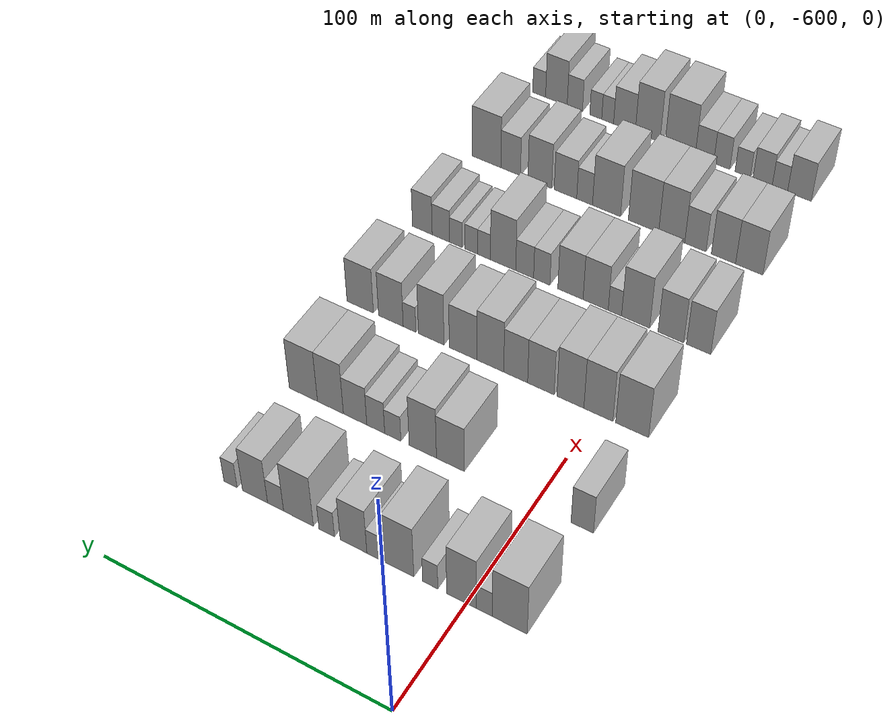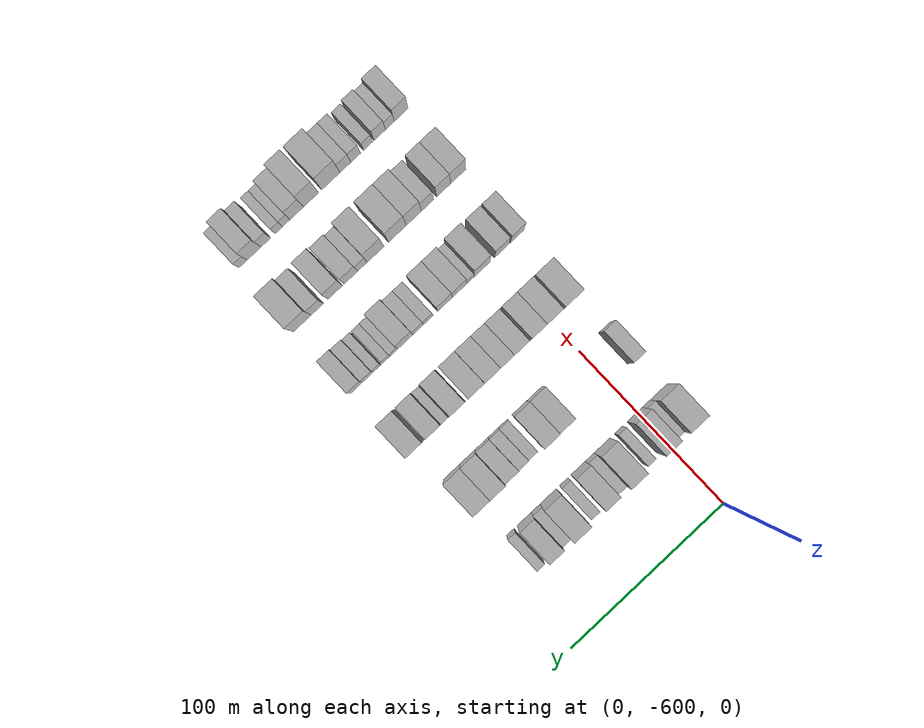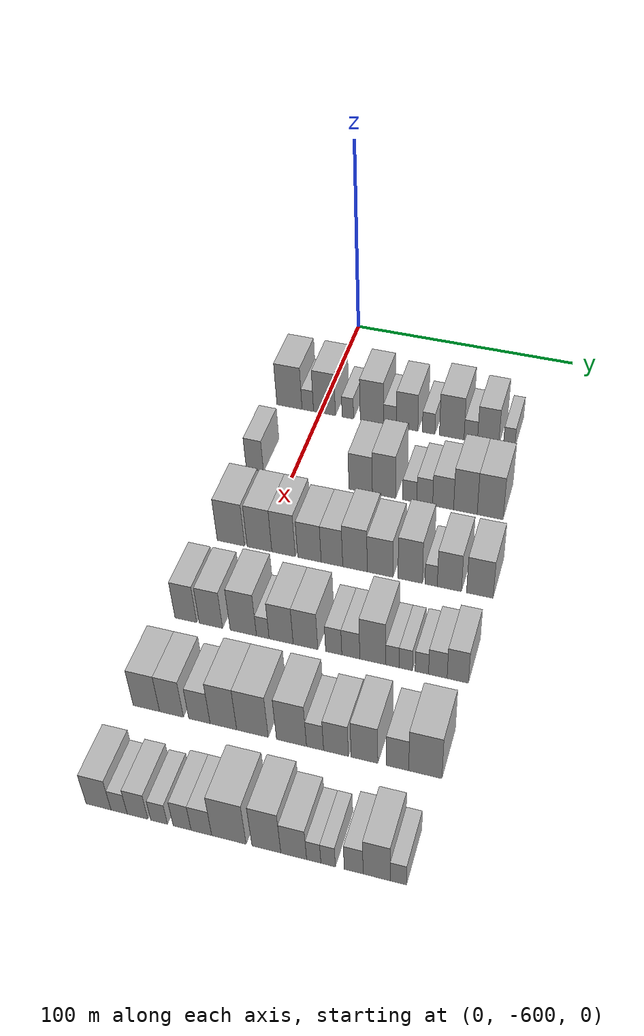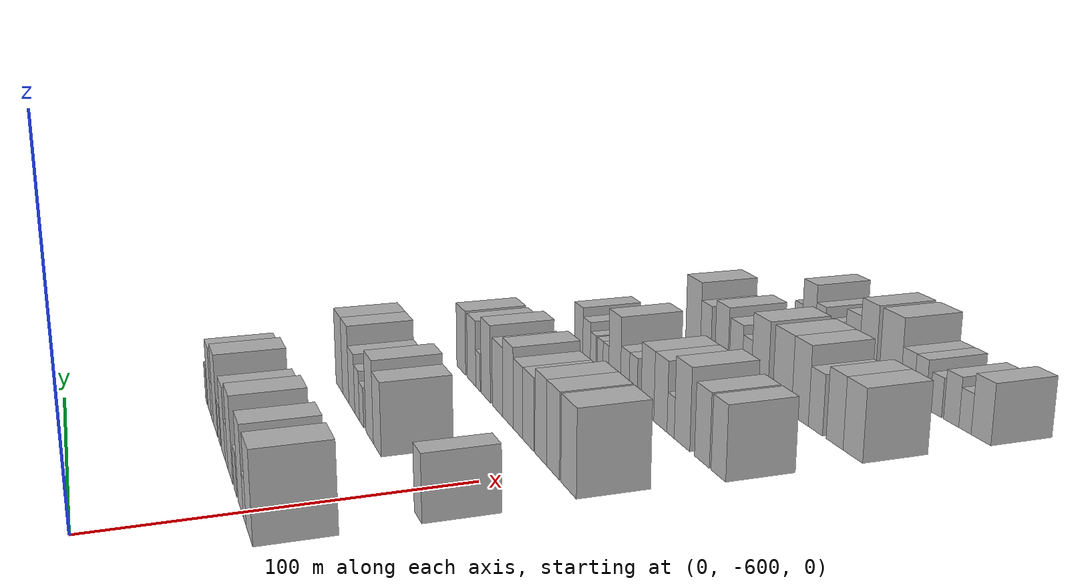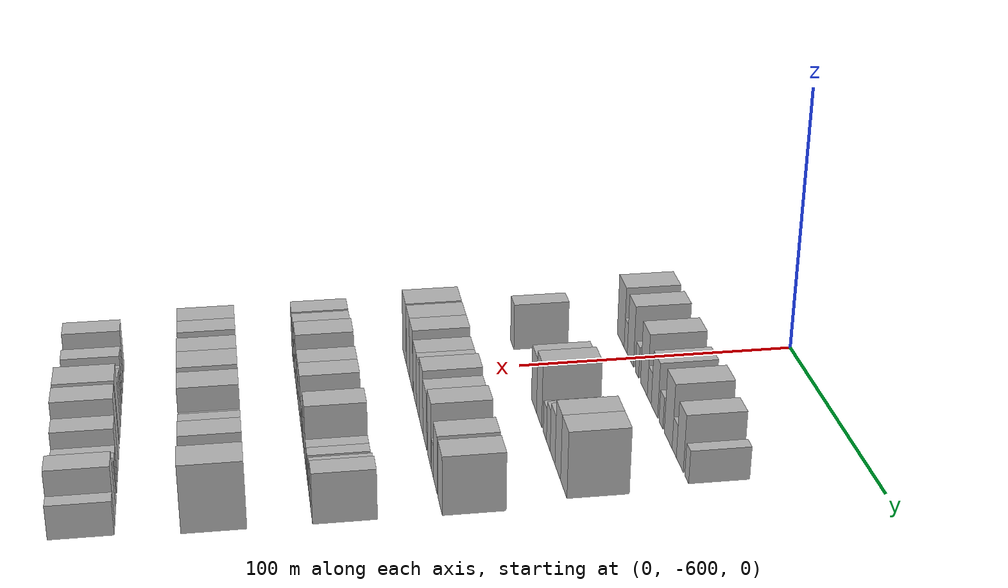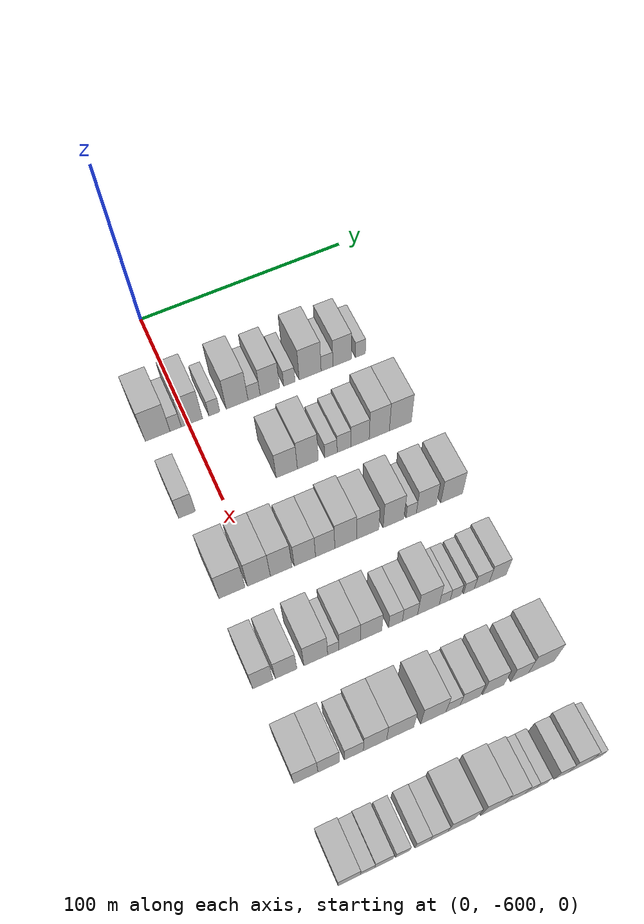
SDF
<sdf version="1.6">
 <world name="default">
  <model name="building_1">
   <static>1</static>
   <pose>50.0000 -614.2552 0 0.000000 0.000000 0.000000</pose>
   <link name="link">
    <pose>0 0 12.00 0 0 0</pose>
    <collision name="collision"><geometry><box><size>20.0000 11.4896 24.0000</size></box></geometry></collision>
    <visual name="visual">
     <cast_shadows>0</cast_shadows>
     <geometry><box><size>20.0000 11.4896 24.0000</size></box></geometry>
     <material>
      <script>
       <uri>model://HANNAS_wall/materials/scripts</uri>
       <uri>model://HANNAS_wall/materials/textures</uri>
       <name>vrc/HANNAS_wall</name>
      </script>
     </material>
    </visual>
   </link>
  </model>
  <model name="building_2">
   <static>1</static>
   <pose>50.0000 -605.8968 0 0.000000 0.000000 0.000000</pose>
   <link name="link">
    <pose>0 0 6.00 0 0 0</pose>
    <collision name="collision"><geometry><box><size>20.0000 5.2273 12.0000</size></box></geometry></collision>
    <visual name="visual">
     <cast_shadows>0</cast_shadows>
     <geometry><box><size>20.0000 5.2273 12.0000</size></box></geometry>
     <material>
      <script>
       <uri>model://HANNAS_wall/materials/scripts</uri>
       <uri>model://HANNAS_wall/materials/textures</uri>
       <name>vrc/HANNAS_wall</name>
      </script>
     </material>
    </visual>
   </link>
  </model>
  <model name="building_3">
   <static>1</static>
   <pose>50.0000 -598.3122 0 0.000000 0.000000 0.000000</pose>
   <link name="link">
    <pose>0 0 12.00 0 0 0</pose>
    <collision name="collision"><geometry><box><size>20.0000 9.9418 24.0000</size></box></geometry></collision>
    <visual name="visual">
     <cast_shadows>0</cast_shadows>
     <geometry><box><size>20.0000 9.9418 24.0000</size></box></geometry>
     <material>
      <script>
       <uri>model://HANNAS_wall/materials/scripts</uri>
       <uri>model://HANNAS_wall/materials/textures</uri>
       <name>vrc/HANNAS_wall</name>
      </script>
     </material>
    </visual>
   </link>
  </model>
  <model name="building_4">
   <static>1</static>
   <pose>50.0000 -587.7606 0 0.000000 0.000000 0.000000</pose>
   <link name="link">
    <pose>0 0 6.00 0 0 0</pose>
    <collision name="collision"><geometry><box><size>20.0000 5.1613 12.0000</size></box></geometry></collision>
    <visual name="visual">
     <cast_shadows>0</cast_shadows>
     <geometry><box><size>20.0000 5.1613 12.0000</size></box></geometry>
     <material>
      <script>
       <uri>model://HANNAS_wall/materials/scripts</uri>
       <uri>model://HANNAS_wall/materials/textures</uri>
       <name>vrc/HANNAS_wall</name>
      </script>
     </material>
    </visual>
   </link>
  </model>
  <model name="building_5">
   <static>1</static>
   <pose>50.0000 -576.9690 0 0.000000 0.000000 0.000000</pose>
   <link name="link">
    <pose>0 0 12.00 0 0 0</pose>
    <collision name="collision"><geometry><box><size>20.0000 10.4220 24.0000</size></box></geometry></collision>
    <visual name="visual">
     <cast_shadows>0</cast_shadows>
     <geometry><box><size>20.0000 10.4220 24.0000</size></box></geometry>
     <material>
      <script>
       <uri>model://HANNAS_wall/materials/scripts</uri>
       <uri>model://HANNAS_wall/materials/textures</uri>
       <name>vrc/HANNAS_wall</name>
      </script>
     </material>
    </visual>
   </link>
  </model>
  <model name="building_6">
   <static>1</static>
   <pose>50.0000 -568.8618 0 0.000000 0.000000 0.000000</pose>
   <link name="link">
    <pose>0 0 6.00 0 0 0</pose>
    <collision name="collision"><geometry><box><size>20.0000 5.7923 12.0000</size></box></geometry></collision>
    <visual name="visual">
     <cast_shadows>0</cast_shadows>
     <geometry><box><size>20.0000 5.7923 12.0000</size></box></geometry>
     <material>
      <script>
       <uri>model://HANNAS_wall/materials/scripts</uri>
       <uri>model://HANNAS_wall/materials/textures</uri>
       <name>vrc/HANNAS_wall</name>
      </script>
     </material>
    </visual>
   </link>
  </model>
  <model name="building_7">
   <static>1</static>
   <pose>50.0000 -561.2793 0 0.000000 0.000000 0.000000</pose>
   <link name="link">
    <pose>0 0 10.50 0 0 0</pose>
    <collision name="collision"><geometry><box><size>20.0000 9.3727 21.0000</size></box></geometry></collision>
    <visual name="visual">
     <cast_shadows>0</cast_shadows>
     <geometry><box><size>20.0000 9.3727 21.0000</size></box></geometry>
     <material>
      <script>
       <uri>model://HANNAS_wall/materials/scripts</uri>
       <uri>model://HANNAS_wall/materials/textures</uri>
       <name>vrc/HANNAS_wall</name>
      </script>
     </material>
    </visual>
   </link>
  </model>
  <model name="building_8">
   <static>1</static>
   <pose>50.0000 -551.8442 0 0.000000 0.000000 0.000000</pose>
   <link name="link">
    <pose>0 0 6.00 0 0 0</pose>
    <collision name="collision"><geometry><box><size>20.0000 5.4976 12.0000</size></box></geometry></collision>
    <visual name="visual">
     <cast_shadows>0</cast_shadows>
     <geometry><box><size>20.0000 5.4976 12.0000</size></box></geometry>
     <material>
      <script>
       <uri>model://HANNAS_wall/materials/scripts</uri>
       <uri>model://HANNAS_wall/materials/textures</uri>
       <name>vrc/HANNAS_wall</name>
      </script>
     </material>
    </visual>
   </link>
  </model>
  <model name="building_9">
   <static>1</static>
   <pose>50.0000 -541.7433 0 0.000000 0.000000 0.000000</pose>
   <link name="link">
    <pose>0 0 12.00 0 0 0</pose>
    <collision name="collision"><geometry><box><size>20.0000 10.7042 24.0000</size></box></geometry></collision>
    <visual name="visual">
     <cast_shadows>0</cast_shadows>
     <geometry><box><size>20.0000 10.7042 24.0000</size></box></geometry>
     <material>
      <script>
       <uri>model://HANNAS_wall/materials/scripts</uri>
       <uri>model://HANNAS_wall/materials/textures</uri>
       <name>vrc/HANNAS_wall</name>
      </script>
     </material>
    </visual>
   </link>
  </model>
  <model name="building_10">
   <static>1</static>
   <pose>50.0000 -533.4846 0 0.000000 0.000000 0.000000</pose>
   <link name="link">
    <pose>0 0 6.00 0 0 0</pose>
    <collision name="collision"><geometry><box><size>20.0000 5.8131 12.0000</size></box></geometry></collision>
    <visual name="visual">
     <cast_shadows>0</cast_shadows>
     <geometry><box><size>20.0000 5.8131 12.0000</size></box></geometry>
     <material>
      <script>
       <uri>model://HANNAS_wall/materials/scripts</uri>
       <uri>model://HANNAS_wall/materials/textures</uri>
       <name>vrc/HANNAS_wall</name>
      </script>
     </material>
    </visual>
   </link>
  </model>
  <model name="building_11">
   <static>1</static>
   <pose>50.0000 -525.9968 0 0.000000 0.000000 0.000000</pose>
   <link name="link">
    <pose>0 0 10.50 0 0 0</pose>
    <collision name="collision"><geometry><box><size>20.0000 9.1624 21.0000</size></box></geometry></collision>
    <visual name="visual">
     <cast_shadows>0</cast_shadows>
     <geometry><box><size>20.0000 9.1624 21.0000</size></box></geometry>
     <material>
      <script>
       <uri>model://HANNAS_wall/materials/scripts</uri>
       <uri>model://HANNAS_wall/materials/textures</uri>
       <name>vrc/HANNAS_wall</name>
      </script>
     </material>
    </visual>
   </link>
  </model>
  <model name="building_12">
   <static>1</static>
   <pose>50.0000 -516.9690 0 0.000000 0.000000 0.000000</pose>
   <link name="link">
    <pose>0 0 6.00 0 0 0</pose>
    <collision name="collision"><geometry><box><size>20.0000 4.8932 12.0000</size></box></geometry></collision>
    <visual name="visual">
     <cast_shadows>0</cast_shadows>
     <geometry><box><size>20.0000 4.8932 12.0000</size></box></geometry>
     <material>
      <script>
       <uri>model://HANNAS_wall/materials/scripts</uri>
       <uri>model://HANNAS_wall/materials/textures</uri>
       <name>vrc/HANNAS_wall</name>
      </script>
     </material>
    </visual>
   </link>
  </model>
  <model name="building_144">
   <static>1</static>
   <pose>90.0000 -616.2177 0 0.000000 0.000000 0.000000</pose>
   <link name="link">
    <pose>0 0 9.00 0 0 0</pose>
    <collision name="collision"><geometry><box><size>20.0000 7.5646 18.0000</size></box></geometry></collision>
    <visual name="visual">
     <cast_shadows>0</cast_shadows>
     <geometry><box><size>20.0000 7.5646 18.0000</size></box></geometry>
     <material>
      <script>
       <uri>model://HANNAS_wall/materials/scripts</uri>
       <uri>model://HANNAS_wall/materials/textures</uri>
       <name>vrc/HANNAS_wall</name>
      </script>
     </material>
    </visual>
   </link>
  </model>
  <model name="building_145">
   <static>1</static>
   <pose>90.0000 -570.5468 0 0.000000 0.000000 0.000000</pose>
   <link name="link">
    <pose>0 0 10.50 0 0 0</pose>
    <collision name="collision"><geometry><box><size>20.0000 9.9257 21.0000</size></box></geometry></collision>
    <visual name="visual">
     <cast_shadows>0</cast_shadows>
     <geometry><box><size>20.0000 9.9257 21.0000</size></box></geometry>
     <material>
      <script>
       <uri>model://HANNAS_wall/materials/scripts</uri>
       <uri>model://HANNAS_wall/materials/textures</uri>
       <name>vrc/HANNAS_wall</name>
      </script>
     </material>
    </visual>
   </link>
  </model>
  <model name="building_146">
   <static>1</static>
   <pose>90.0000 -560.6741 0 0.000000 0.000000 0.000000</pose>
   <link name="link">
    <pose>0 0 12.00 0 0 0</pose>
    <collision name="collision"><geometry><box><size>20.0000 9.8198 24.0000</size></box></geometry></collision>
    <visual name="visual">
     <cast_shadows>0</cast_shadows>
     <geometry><box><size>20.0000 9.8198 24.0000</size></box></geometry>
     <material>
      <script>
       <uri>model://HANNAS_wall/materials/scripts</uri>
       <uri>model://HANNAS_wall/materials/textures</uri>
       <name>vrc/HANNAS_wall</name>
      </script>
     </material>
    </visual>
   </link>
  </model>
  <model name="building_147">
   <static>1</static>
   <pose>90.0000 -549.8131 0 0.000000 0.000000 0.000000</pose>
   <link name="link">
    <pose>0 0 6.00 0 0 0</pose>
    <collision name="collision"><geometry><box><size>20.0000 5.9021 12.0000</size></box></geometry></collision>
    <visual name="visual">
     <cast_shadows>0</cast_shadows>
     <geometry><box><size>20.0000 5.9021 12.0000</size></box></geometry>
     <material>
      <script>
       <uri>model://HANNAS_wall/materials/scripts</uri>
       <uri>model://HANNAS_wall/materials/textures</uri>
       <name>vrc/HANNAS_wall</name>
      </script>
     </material>
    </visual>
   </link>
  </model>
  <model name="building_148">
   <static>1</static>
   <pose>90.0000 -543.5693 0 0.000000 0.000000 0.000000</pose>
   <link name="link">
    <pose>0 0 7.50 0 0 0</pose>
    <collision name="collision"><geometry><box><size>20.0000 6.5854 15.0000</size></box></geometry></collision>
    <visual name="visual">
     <cast_shadows>0</cast_shadows>
     <geometry><box><size>20.0000 6.5854 15.0000</size></box></geometry>
     <material>
      <script>
       <uri>model://HANNAS_wall/materials/scripts</uri>
       <uri>model://HANNAS_wall/materials/textures</uri>
       <name>vrc/HANNAS_wall</name>
      </script>
     </material>
    </visual>
   </link>
  </model>
  <model name="building_149">
   <static>1</static>
   <pose>90.0000 -535.9341 0 0.000000 0.000000 0.000000</pose>
   <link name="link">
    <pose>0 0 9.00 0 0 0</pose>
    <collision name="collision"><geometry><box><size>20.0000 8.6849 18.0000</size></box></geometry></collision>
    <visual name="visual">
     <cast_shadows>0</cast_shadows>
     <geometry><box><size>20.0000 8.6849 18.0000</size></box></geometry>
     <material>
      <script>
       <uri>model://HANNAS_wall/materials/scripts</uri>
       <uri>model://HANNAS_wall/materials/textures</uri>
       <name>vrc/HANNAS_wall</name>
      </script>
     </material>
    </visual>
   </link>
  </model>
  <model name="building_150">
   <static>1</static>
   <pose>90.0000 -526.7339 0 0.000000 0.000000 0.000000</pose>
   <link name="link">
    <pose>0 0 12.00 0 0 0</pose>
    <collision name="collision"><geometry><box><size>20.0000 9.7155 24.0000</size></box></geometry></collision>
    <visual name="visual">
     <cast_shadows>0</cast_shadows>
     <geometry><box><size>20.0000 9.7155 24.0000</size></box></geometry>
     <material>
      <script>
       <uri>model://HANNAS_wall/materials/scripts</uri>
       <uri>model://HANNAS_wall/materials/textures</uri>
       <name>vrc/HANNAS_wall</name>
      </script>
     </material>
    </visual>
   </link>
  </model>
  <model name="building_151">
   <static>1</static>
   <pose>90.0000 -516.5508 0 0.000000 0.000000 0.000000</pose>
   <link name="link">
    <pose>0 0 12.00 0 0 0</pose>
    <collision name="collision"><geometry><box><size>20.0000 10.6507 24.0000</size></box></geometry></collision>
    <visual name="visual">
     <cast_shadows>0</cast_shadows>
     <geometry><box><size>20.0000 10.6507 24.0000</size></box></geometry>
     <material>
      <script>
       <uri>model://HANNAS_wall/materials/scripts</uri>
       <uri>model://HANNAS_wall/materials/textures</uri>
       <name>vrc/HANNAS_wall</name>
      </script>
     </material>
    </visual>
   </link>
  </model>
  <model name="building_280">
   <static>1</static>
   <pose>130.0000 -612.2643 0 0.000000 0.000000 0.000000</pose>
   <link name="link">
    <pose>0 0 12.00 0 0 0</pose>
    <collision name="collision"><geometry><box><size>20.0000 11.4713 24.0000</size></box></geometry></collision>
    <visual name="visual">
     <cast_shadows>0</cast_shadows>
     <geometry><box><size>20.0000 11.4713 24.0000</size></box></geometry>
     <material>
      <script>
       <uri>model://HANNAS_wall/materials/scripts</uri>
       <uri>model://HANNAS_wall/materials/textures</uri>
       <name>vrc/HANNAS_wall</name>
      </script>
     </material>
    </visual>
   </link>
  </model>
  <model name="building_281">
   <static>1</static>
   <pose>130.0000 -600.4099 0 0.000000 0.000000 0.000000</pose>
   <link name="link">
    <pose>0 0 12.00 0 0 0</pose>
    <collision name="collision"><geometry><box><size>20.0000 10.2377 24.0000</size></box></geometry></collision>
    <visual name="visual">
     <cast_shadows>0</cast_shadows>
     <geometry><box><size>20.0000 10.2377 24.0000</size></box></geometry>
     <material>
      <script>
       <uri>model://HANNAS_wall/materials/scripts</uri>
       <uri>model://HANNAS_wall/materials/textures</uri>
       <name>vrc/HANNAS_wall</name>
      </script>
     </material>
    </visual>
   </link>
  </model>
  <model name="building_282">
   <static>1</static>
   <pose>130.0000 -590.4721 0 0.000000 0.000000 0.000000</pose>
   <link name="link">
    <pose>0 0 12.00 0 0 0</pose>
    <collision name="collision"><geometry><box><size>20.0000 9.6379 24.0000</size></box></geometry></collision>
    <visual name="visual">
     <cast_shadows>0</cast_shadows>
     <geometry><box><size>20.0000 9.6379 24.0000</size></box></geometry>
     <material>
      <script>
       <uri>model://HANNAS_wall/materials/scripts</uri>
       <uri>model://HANNAS_wall/materials/textures</uri>
       <name>vrc/HANNAS_wall</name>
      </script>
     </material>
    </visual>
   </link>
  </model>
  <model name="building_283">
   <static>1</static>
   <pose>130.0000 -579.8656 0 0.000000 0.000000 0.000000</pose>
   <link name="link">
    <pose>0 0 10.50 0 0 0</pose>
    <collision name="collision"><geometry><box><size>20.0000 9.5750 21.0000</size></box></geometry></collision>
    <visual name="visual">
     <cast_shadows>0</cast_shadows>
     <geometry><box><size>20.0000 9.5750 21.0000</size></box></geometry>
     <material>
      <script>
       <uri>model://HANNAS_wall/materials/scripts</uri>
       <uri>model://HANNAS_wall/materials/textures</uri>
       <name>vrc/HANNAS_wall</name>
      </script>
     </material>
    </visual>
   </link>
  </model>
  <model name="building_284">
   <static>1</static>
   <pose>130.0000 -570.7141 0 0.000000 0.000000 0.000000</pose>
   <link name="link">
    <pose>0 0 10.50 0 0 0</pose>
    <collision name="collision"><geometry><box><size>20.0000 8.7280 21.0000</size></box></geometry></collision>
    <visual name="visual">
     <cast_shadows>0</cast_shadows>
     <geometry><box><size>20.0000 8.7280 21.0000</size></box></geometry>
     <material>
      <script>
       <uri>model://HANNAS_wall/materials/scripts</uri>
       <uri>model://HANNAS_wall/materials/textures</uri>
       <name>vrc/HANNAS_wall</name>
      </script>
     </material>
    </visual>
   </link>
  </model>
  <model name="building_285">
   <static>1</static>
   <pose>130.0000 -561.3985 0 0.000000 0.000000 0.000000</pose>
   <link name="link">
    <pose>0 0 12.00 0 0 0</pose>
    <collision name="collision"><geometry><box><size>20.0000 9.9030 24.0000</size></box></geometry></collision>
    <visual name="visual">
     <cast_shadows>0</cast_shadows>
     <geometry><box><size>20.0000 9.9030 24.0000</size></box></geometry>
     <material>
      <script>
       <uri>model://HANNAS_wall/materials/scripts</uri>
       <uri>model://HANNAS_wall/materials/textures</uri>
       <name>vrc/HANNAS_wall</name>
      </script>
     </material>
    </visual>
   </link>
  </model>
  <model name="building_286">
   <static>1</static>
   <pose>130.0000 -551.3024 0 0.000000 0.000000 0.000000</pose>
   <link name="link">
    <pose>0 0 10.50 0 0 0</pose>
    <collision name="collision"><geometry><box><size>20.0000 10.2893 21.0000</size></box></geometry></collision>
    <visual name="visual">
     <cast_shadows>0</cast_shadows>
     <geometry><box><size>20.0000 10.2893 21.0000</size></box></geometry>
     <material>
      <script>
       <uri>model://HANNAS_wall/materials/scripts</uri>
       <uri>model://HANNAS_wall/materials/textures</uri>
       <name>vrc/HANNAS_wall</name>
      </script>
     </material>
    </visual>
   </link>
  </model>
  <model name="building_287">
   <static>1</static>
   <pose>130.0000 -539.3271 0 0.000000 0.000000 0.000000</pose>
   <link name="link">
    <pose>0 0 12.00 0 0 0</pose>
    <collision name="collision"><geometry><box><size>20.0000 9.6613 24.0000</size></box></geometry></collision>
    <visual name="visual">
     <cast_shadows>0</cast_shadows>
     <geometry><box><size>20.0000 9.6613 24.0000</size></box></geometry>
     <material>
      <script>
       <uri>model://HANNAS_wall/materials/scripts</uri>
       <uri>model://HANNAS_wall/materials/textures</uri>
       <name>vrc/HANNAS_wall</name>
      </script>
     </material>
    </visual>
   </link>
  </model>
  <model name="building_288">
   <static>1</static>
   <pose>130.0000 -531.0781 0 0.000000 0.000000 0.000000</pose>
   <link name="link">
    <pose>0 0 6.00 0 0 0</pose>
    <collision name="collision"><geometry><box><size>20.0000 4.8367 12.0000</size></box></geometry></collision>
    <visual name="visual">
     <cast_shadows>0</cast_shadows>
     <geometry><box><size>20.0000 4.8367 12.0000</size></box></geometry>
     <material>
      <script>
       <uri>model://HANNAS_wall/materials/scripts</uri>
       <uri>model://HANNAS_wall/materials/textures</uri>
       <name>vrc/HANNAS_wall</name>
      </script>
     </material>
    </visual>
   </link>
  </model>
  <model name="building_289">
   <static>1</static>
   <pose>130.0000 -523.9202 0 0.000000 0.000000 0.000000</pose>
   <link name="link">
    <pose>0 0 10.50 0 0 0</pose>
    <collision name="collision"><geometry><box><size>20.0000 9.4791 21.0000</size></box></geometry></collision>
    <visual name="visual">
     <cast_shadows>0</cast_shadows>
     <geometry><box><size>20.0000 9.4791 21.0000</size></box></geometry>
     <material>
      <script>
       <uri>model://HANNAS_wall/materials/scripts</uri>
       <uri>model://HANNAS_wall/materials/textures</uri>
       <name>vrc/HANNAS_wall</name>
      </script>
     </material>
    </visual>
   </link>
  </model>
  <model name="building_290">
   <static>1</static>
   <pose>130.0000 -512.0263 0 0.000000 0.000000 0.000000</pose>
   <link name="link">
    <pose>0 0 10.50 0 0 0</pose>
    <collision name="collision"><geometry><box><size>20.0000 10.3087 21.0000</size></box></geometry></collision>
    <visual name="visual">
     <cast_shadows>0</cast_shadows>
     <geometry><box><size>20.0000 10.3087 21.0000</size></box></geometry>
     <material>
      <script>
       <uri>model://HANNAS_wall/materials/scripts</uri>
       <uri>model://HANNAS_wall/materials/textures</uri>
       <name>vrc/HANNAS_wall</name>
      </script>
     </material>
    </visual>
   </link>
  </model>
  <model name="building_419">
   <static>1</static>
   <pose>170.0000 -615.6729 0 0.000000 0.000000 0.000000</pose>
   <link name="link">
    <pose>0 0 10.50 0 0 0</pose>
    <collision name="collision"><geometry><box><size>20.0000 8.6541 21.0000</size></box></geometry></collision>
    <visual name="visual">
     <cast_shadows>0</cast_shadows>
     <geometry><box><size>20.0000 8.6541 21.0000</size></box></geometry>
     <material>
      <script>
       <uri>model://HANNAS_wall/materials/scripts</uri>
       <uri>model://HANNAS_wall/materials/textures</uri>
       <name>vrc/HANNAS_wall</name>
      </script>
     </material>
    </visual>
   </link>
  </model>
  <model name="building_420">
   <static>1</static>
   <pose>170.0000 -605.7183 0 0.000000 0.000000 0.000000</pose>
   <link name="link">
    <pose>0 0 10.50 0 0 0</pose>
    <collision name="collision"><geometry><box><size>20.0000 9.2551 21.0000</size></box></geometry></collision>
    <visual name="visual">
     <cast_shadows>0</cast_shadows>
     <geometry><box><size>20.0000 9.2551 21.0000</size></box></geometry>
     <material>
      <script>
       <uri>model://HANNAS_wall/materials/scripts</uri>
       <uri>model://HANNAS_wall/materials/textures</uri>
       <name>vrc/HANNAS_wall</name>
      </script>
     </material>
    </visual>
   </link>
  </model>
  <model name="building_421">
   <static>1</static>
   <pose>170.0000 -592.9359 0 0.000000 0.000000 0.000000</pose>
   <link name="link">
    <pose>0 0 12.00 0 0 0</pose>
    <collision name="collision"><geometry><box><size>20.0000 10.3098 24.0000</size></box></geometry></collision>
    <visual name="visual">
     <cast_shadows>0</cast_shadows>
     <geometry><box><size>20.0000 10.3098 24.0000</size></box></geometry>
     <material>
      <script>
       <uri>model://HANNAS_wall/materials/scripts</uri>
       <uri>model://HANNAS_wall/materials/textures</uri>
       <name>vrc/HANNAS_wall</name>
      </script>
     </material>
    </visual>
   </link>
  </model>
  <model name="building_422">
   <static>1</static>
   <pose>170.0000 -585.3154 0 0.000000 0.000000 0.000000</pose>
   <link name="link">
    <pose>0 0 6.00 0 0 0</pose>
    <collision name="collision"><geometry><box><size>20.0000 4.9312 12.0000</size></box></geometry></collision>
    <visual name="visual">
     <cast_shadows>0</cast_shadows>
     <geometry><box><size>20.0000 4.9312 12.0000</size></box></geometry>
     <material>
      <script>
       <uri>model://HANNAS_wall/materials/scripts</uri>
       <uri>model://HANNAS_wall/materials/textures</uri>
       <name>vrc/HANNAS_wall</name>
      </script>
     </material>
    </visual>
   </link>
  </model>
  <model name="building_423">
   <static>1</static>
   <pose>170.0000 -578.1846 0 0.000000 0.000000 0.000000</pose>
   <link name="link">
    <pose>0 0 10.50 0 0 0</pose>
    <collision name="collision"><geometry><box><size>20.0000 9.3304 21.0000</size></box></geometry></collision>
    <visual name="visual">
     <cast_shadows>0</cast_shadows>
     <geometry><box><size>20.0000 9.3304 21.0000</size></box></geometry>
     <material>
      <script>
       <uri>model://HANNAS_wall/materials/scripts</uri>
       <uri>model://HANNAS_wall/materials/textures</uri>
       <name>vrc/HANNAS_wall</name>
      </script>
     </material>
    </visual>
   </link>
  </model>
  <model name="building_424">
   <static>1</static>
   <pose>170.0000 -568.7692 0 0.000000 0.000000 0.000000</pose>
   <link name="link">
    <pose>0 0 10.50 0 0 0</pose>
    <collision name="collision"><geometry><box><size>20.0000 9.5005 21.0000</size></box></geometry></collision>
    <visual name="visual">
     <cast_shadows>0</cast_shadows>
     <geometry><box><size>20.0000 9.5005 21.0000</size></box></geometry>
     <material>
      <script>
       <uri>model://HANNAS_wall/materials/scripts</uri>
       <uri>model://HANNAS_wall/materials/textures</uri>
       <name>vrc/HANNAS_wall</name>
      </script>
     </material>
    </visual>
   </link>
  </model>
  <model name="building_425">
   <static>1</static>
   <pose>170.0000 -557.9243 0 0.000000 0.000000 0.000000</pose>
   <link name="link">
    <pose>0 0 7.50 0 0 0</pose>
    <collision name="collision"><geometry><box><size>20.0000 6.1893 15.0000</size></box></geometry></collision>
    <visual name="visual">
     <cast_shadows>0</cast_shadows>
     <geometry><box><size>20.0000 6.1893 15.0000</size></box></geometry>
     <material>
      <script>
       <uri>model://HANNAS_wall/materials/scripts</uri>
       <uri>model://HANNAS_wall/materials/textures</uri>
       <name>vrc/HANNAS_wall</name>
      </script>
     </material>
    </visual>
   </link>
  </model>
  <model name="building_426">
   <static>1</static>
   <pose>170.0000 -551.4134 0 0.000000 0.000000 0.000000</pose>
   <link name="link">
    <pose>0 0 7.50 0 0 0</pose>
    <collision name="collision"><geometry><box><size>20.0000 6.8325 15.0000</size></box></geometry></collision>
    <visual name="visual">
     <cast_shadows>0</cast_shadows>
     <geometry><box><size>20.0000 6.8325 15.0000</size></box></geometry>
     <material>
      <script>
       <uri>model://HANNAS_wall/materials/scripts</uri>
       <uri>model://HANNAS_wall/materials/textures</uri>
       <name>vrc/HANNAS_wall</name>
      </script>
     </material>
    </visual>
   </link>
  </model>
  <model name="building_427">
   <static>1</static>
   <pose>170.0000 -543.1071 0 0.000000 0.000000 0.000000</pose>
   <link name="link">
    <pose>0 0 12.00 0 0 0</pose>
    <collision name="collision"><geometry><box><size>20.0000 9.7802 24.0000</size></box></geometry></collision>
    <visual name="visual">
     <cast_shadows>0</cast_shadows>
     <geometry><box><size>20.0000 9.7802 24.0000</size></box></geometry>
     <material>
      <script>
       <uri>model://HANNAS_wall/materials/scripts</uri>
       <uri>model://HANNAS_wall/materials/textures</uri>
       <name>vrc/HANNAS_wall</name>
      </script>
     </material>
    </visual>
   </link>
  </model>
  <model name="building_428">
   <static>1</static>
   <pose>170.0000 -535.7124 0 0.000000 0.000000 0.000000</pose>
   <link name="link">
    <pose>0 0 6.00 0 0 0</pose>
    <collision name="collision"><geometry><box><size>20.0000 5.0092 12.0000</size></box></geometry></collision>
    <visual name="visual">
     <cast_shadows>0</cast_shadows>
     <geometry><box><size>20.0000 5.0092 12.0000</size></box></geometry>
     <material>
      <script>
       <uri>model://HANNAS_wall/materials/scripts</uri>
       <uri>model://HANNAS_wall/materials/textures</uri>
       <name>vrc/HANNAS_wall</name>
      </script>
     </material>
    </visual>
   </link>
  </model>
  <model name="building_429">
   <static>1</static>
   <pose>170.0000 -530.7049 0 0.000000 0.000000 0.000000</pose>
   <link name="link">
    <pose>0 0 6.00 0 0 0</pose>
    <collision name="collision"><geometry><box><size>20.0000 5.0058 12.0000</size></box></geometry></collision>
    <visual name="visual">
     <cast_shadows>0</cast_shadows>
     <geometry><box><size>20.0000 5.0058 12.0000</size></box></geometry>
     <material>
      <script>
       <uri>model://HANNAS_wall/materials/scripts</uri>
       <uri>model://HANNAS_wall/materials/textures</uri>
       <name>vrc/HANNAS_wall</name>
      </script>
     </material>
    </visual>
   </link>
  </model>
  <model name="building_430">
   <static>1</static>
   <pose>170.0000 -524.6978 0 0.000000 0.000000 0.000000</pose>
   <link name="link">
    <pose>0 0 6.00 0 0 0</pose>
    <collision name="collision"><geometry><box><size>20.0000 5.0084 12.0000</size></box></geometry></collision>
    <visual name="visual">
     <cast_shadows>0</cast_shadows>
     <geometry><box><size>20.0000 5.0084 12.0000</size></box></geometry>
     <material>
      <script>
       <uri>model://HANNAS_wall/materials/scripts</uri>
       <uri>model://HANNAS_wall/materials/textures</uri>
       <name>vrc/HANNAS_wall</name>
      </script>
     </material>
    </visual>
   </link>
  </model>
  <model name="building_431">
   <static>1</static>
   <pose>170.0000 -518.7608 0 0.000000 0.000000 0.000000</pose>
   <link name="link">
    <pose>0 0 7.50 0 0 0</pose>
    <collision name="collision"><geometry><box><size>20.0000 6.8657 15.0000</size></box></geometry></collision>
    <visual name="visual">
     <cast_shadows>0</cast_shadows>
     <geometry><box><size>20.0000 6.8657 15.0000</size></box></geometry>
     <material>
      <script>
       <uri>model://HANNAS_wall/materials/scripts</uri>
       <uri>model://HANNAS_wall/materials/textures</uri>
       <name>vrc/HANNAS_wall</name>
      </script>
     </material>
    </visual>
   </link>
  </model>
  <model name="building_432">
   <static>1</static>
   <pose>170.0000 -511.3955 0 0.000000 0.000000 0.000000</pose>
   <link name="link">
    <pose>0 0 9.00 0 0 0</pose>
    <collision name="collision"><geometry><box><size>20.0000 7.8649 18.0000</size></box></geometry></collision>
    <visual name="visual">
     <cast_shadows>0</cast_shadows>
     <geometry><box><size>20.0000 7.8649 18.0000</size></box></geometry>
     <material>
      <script>
       <uri>model://HANNAS_wall/materials/scripts</uri>
       <uri>model://HANNAS_wall/materials/textures</uri>
       <name>vrc/HANNAS_wall</name>
      </script>
     </material>
    </visual>
   </link>
  </model>
  <model name="building_564">
   <static>1</static>
   <pose>210.0000 -614.9949 0 0.000000 0.000000 0.000000</pose>
   <link name="link">
    <pose>0 0 10.50 0 0 0</pose>
    <collision name="collision"><geometry><box><size>20.0000 10.0102 21.0000</size></box></geometry></collision>
    <visual name="visual">
     <cast_shadows>0</cast_shadows>
     <geometry><box><size>20.0000 10.0102 21.0000</size></box></geometry>
     <material>
      <script>
       <uri>model://HANNAS_wall/materials/scripts</uri>
       <uri>model://HANNAS_wall/materials/textures</uri>
       <name>vrc/HANNAS_wall</name>
      </script>
     </material>
    </visual>
   </link>
  </model>
  <model name="building_565">
   <static>1</static>
   <pose>210.0000 -605.5087 0 0.000000 0.000000 0.000000</pose>
   <link name="link">
    <pose>0 0 10.50 0 0 0</pose>
    <collision name="collision"><geometry><box><size>20.0000 8.9622 21.0000</size></box></geometry></collision>
    <visual name="visual">
     <cast_shadows>0</cast_shadows>
     <geometry><box><size>20.0000 8.9622 21.0000</size></box></geometry>
     <material>
      <script>
       <uri>model://HANNAS_wall/materials/scripts</uri>
       <uri>model://HANNAS_wall/materials/textures</uri>
       <name>vrc/HANNAS_wall</name>
      </script>
     </material>
    </visual>
   </link>
  </model>
  <model name="building_566">
   <static>1</static>
   <pose>210.0000 -595.0391 0 0.000000 0.000000 0.000000</pose>
   <link name="link">
    <pose>0 0 9.00 0 0 0</pose>
    <collision name="collision"><geometry><box><size>20.0000 7.9770 18.0000</size></box></geometry></collision>
    <visual name="visual">
     <cast_shadows>0</cast_shadows>
     <geometry><box><size>20.0000 7.9770 18.0000</size></box></geometry>
     <material>
      <script>
       <uri>model://HANNAS_wall/materials/scripts</uri>
       <uri>model://HANNAS_wall/materials/textures</uri>
       <name>vrc/HANNAS_wall</name>
      </script>
     </material>
    </visual>
   </link>
  </model>
  <model name="building_567">
   <static>1</static>
   <pose>210.0000 -586.1194 0 0.000000 0.000000 0.000000</pose>
   <link name="link">
    <pose>0 0 12.00 0 0 0</pose>
    <collision name="collision"><geometry><box><size>20.0000 9.8625 24.0000</size></box></geometry></collision>
    <visual name="visual">
     <cast_shadows>0</cast_shadows>
     <geometry><box><size>20.0000 9.8625 24.0000</size></box></geometry>
     <material>
      <script>
       <uri>model://HANNAS_wall/materials/scripts</uri>
       <uri>model://HANNAS_wall/materials/textures</uri>
       <name>vrc/HANNAS_wall</name>
      </script>
     </material>
    </visual>
   </link>
  </model>
  <model name="building_568">
   <static>1</static>
   <pose>210.0000 -575.3885 0 0.000000 0.000000 0.000000</pose>
   <link name="link">
    <pose>0 0 12.00 0 0 0</pose>
    <collision name="collision"><geometry><box><size>20.0000 11.5991 24.0000</size></box></geometry></collision>
    <visual name="visual">
     <cast_shadows>0</cast_shadows>
     <geometry><box><size>20.0000 11.5991 24.0000</size></box></geometry>
     <material>
      <script>
       <uri>model://HANNAS_wall/materials/scripts</uri>
       <uri>model://HANNAS_wall/materials/textures</uri>
       <name>vrc/HANNAS_wall</name>
      </script>
     </material>
    </visual>
   </link>
  </model>
  <model name="building_569">
   <static>1</static>
   <pose>210.0000 -561.1352 0 0.000000 0.000000 0.000000</pose>
   <link name="link">
    <pose>0 0 12.00 0 0 0</pose>
    <collision name="collision"><geometry><box><size>20.0000 10.9076 24.0000</size></box></geometry></collision>
    <visual name="visual">
     <cast_shadows>0</cast_shadows>
     <geometry><box><size>20.0000 10.9076 24.0000</size></box></geometry>
     <material>
      <script>
       <uri>model://HANNAS_wall/materials/scripts</uri>
       <uri>model://HANNAS_wall/materials/textures</uri>
       <name>vrc/HANNAS_wall</name>
      </script>
     </material>
    </visual>
   </link>
  </model>
  <model name="building_570">
   <static>1</static>
   <pose>210.0000 -552.5926 0 0.000000 0.000000 0.000000</pose>
   <link name="link">
    <pose>0 0 7.50 0 0 0</pose>
    <collision name="collision"><geometry><box><size>20.0000 6.1775 15.0000</size></box></geometry></collision>
    <visual name="visual">
     <cast_shadows>0</cast_shadows>
     <geometry><box><size>20.0000 6.1775 15.0000</size></box></geometry>
     <material>
      <script>
       <uri>model://HANNAS_wall/materials/scripts</uri>
       <uri>model://HANNAS_wall/materials/textures</uri>
       <name>vrc/HANNAS_wall</name>
      </script>
     </material>
    </visual>
   </link>
  </model>
  <model name="building_571">
   <static>1</static>
   <pose>210.0000 -545.0575 0 0.000000 0.000000 0.000000</pose>
   <link name="link">
    <pose>0 0 9.00 0 0 0</pose>
    <collision name="collision"><geometry><box><size>20.0000 8.8927 18.0000</size></box></geometry></collision>
    <visual name="visual">
     <cast_shadows>0</cast_shadows>
     <geometry><box><size>20.0000 8.8927 18.0000</size></box></geometry>
     <material>
      <script>
       <uri>model://HANNAS_wall/materials/scripts</uri>
       <uri>model://HANNAS_wall/materials/textures</uri>
       <name>vrc/HANNAS_wall</name>
      </script>
     </material>
    </visual>
   </link>
  </model>
  <model name="building_572">
   <static>1</static>
   <pose>210.0000 -534.8746 0 0.000000 0.000000 0.000000</pose>
   <link name="link">
    <pose>0 0 10.50 0 0 0</pose>
    <collision name="collision"><geometry><box><size>20.0000 9.4732 21.0000</size></box></geometry></collision>
    <visual name="visual">
     <cast_shadows>0</cast_shadows>
     <geometry><box><size>20.0000 9.4732 21.0000</size></box></geometry>
     <material>
      <script>
       <uri>model://HANNAS_wall/materials/scripts</uri>
       <uri>model://HANNAS_wall/materials/textures</uri>
       <name>vrc/HANNAS_wall</name>
      </script>
     </material>
    </visual>
   </link>
  </model>
  <model name="building_573">
   <static>1</static>
   <pose>210.0000 -523.1820 0 0.000000 0.000000 0.000000</pose>
   <link name="link">
    <pose>0 0 9.00 0 0 0</pose>
    <collision name="collision"><geometry><box><size>20.0000 7.9119 18.0000</size></box></geometry></collision>
    <visual name="visual">
     <cast_shadows>0</cast_shadows>
     <geometry><box><size>20.0000 7.9119 18.0000</size></box></geometry>
     <material>
      <script>
       <uri>model://HANNAS_wall/materials/scripts</uri>
       <uri>model://HANNAS_wall/materials/textures</uri>
       <name>vrc/HANNAS_wall</name>
      </script>
     </material>
    </visual>
   </link>
  </model>
  <model name="building_574">
   <static>1</static>
   <pose>210.0000 -513.4244 0 0.000000 0.000000 0.000000</pose>
   <link name="link">
    <pose>0 0 12.00 0 0 0</pose>
    <collision name="collision"><geometry><box><size>20.0000 11.6034 24.0000</size></box></geometry></collision>
    <visual name="visual">
     <cast_shadows>0</cast_shadows>
     <geometry><box><size>20.0000 11.6034 24.0000</size></box></geometry>
     <material>
      <script>
       <uri>model://HANNAS_wall/materials/scripts</uri>
       <uri>model://HANNAS_wall/materials/textures</uri>
       <name>vrc/HANNAS_wall</name>
      </script>
     </material>
    </visual>
   </link>
  </model>
  <model name="building_701">
   <static>1</static>
   <pose>250.0000 -615.5293 0 0.000000 0.000000 0.000000</pose>
   <link name="link">
    <pose>0 0 9.00 0 0 0</pose>
    <collision name="collision"><geometry><box><size>20.0000 8.9414 18.0000</size></box></geometry></collision>
    <visual name="visual">
     <cast_shadows>0</cast_shadows>
     <geometry><box><size>20.0000 8.9414 18.0000</size></box></geometry>
     <material>
      <script>
       <uri>model://HANNAS_wall/materials/scripts</uri>
       <uri>model://HANNAS_wall/materials/textures</uri>
       <name>vrc/HANNAS_wall</name>
      </script>
     </material>
    </visual>
   </link>
  </model>
  <model name="building_702">
   <static>1</static>
   <pose>250.0000 -608.1574 0 0.000000 0.000000 0.000000</pose>
   <link name="link">
    <pose>0 0 6.00 0 0 0</pose>
    <collision name="collision"><geometry><box><size>20.0000 5.8024 12.0000</size></box></geometry></collision>
    <visual name="visual">
     <cast_shadows>0</cast_shadows>
     <geometry><box><size>20.0000 5.8024 12.0000</size></box></geometry>
     <material>
      <script>
       <uri>model://HANNAS_wall/materials/scripts</uri>
       <uri>model://HANNAS_wall/materials/textures</uri>
       <name>vrc/HANNAS_wall</name>
      </script>
     </material>
    </visual>
   </link>
  </model>
  <model name="building_703">
   <static>1</static>
   <pose>250.0000 -601.5763 0 0.000000 0.000000 0.000000</pose>
   <link name="link">
    <pose>0 0 7.50 0 0 0</pose>
    <collision name="collision"><geometry><box><size>20.0000 7.3598 15.0000</size></box></geometry></collision>
    <visual name="visual">
     <cast_shadows>0</cast_shadows>
     <geometry><box><size>20.0000 7.3598 15.0000</size></box></geometry>
     <material>
      <script>
       <uri>model://HANNAS_wall/materials/scripts</uri>
       <uri>model://HANNAS_wall/materials/textures</uri>
       <name>vrc/HANNAS_wall</name>
      </script>
     </material>
    </visual>
   </link>
  </model>
  <model name="building_704">
   <static>1</static>
   <pose>250.0000 -593.9514 0 0.000000 0.000000 0.000000</pose>
   <link name="link">
    <pose>0 0 6.00 0 0 0</pose>
    <collision name="collision"><geometry><box><size>20.0000 5.8901 12.0000</size></box></geometry></collision>
    <visual name="visual">
     <cast_shadows>0</cast_shadows>
     <geometry><box><size>20.0000 5.8901 12.0000</size></box></geometry>
     <material>
      <script>
       <uri>model://HANNAS_wall/materials/scripts</uri>
       <uri>model://HANNAS_wall/materials/textures</uri>
       <name>vrc/HANNAS_wall</name>
      </script>
     </material>
    </visual>
   </link>
  </model>
  <model name="building_705">
   <static>1</static>
   <pose>250.0000 -585.8574 0 0.000000 0.000000 0.000000</pose>
   <link name="link">
    <pose>0 0 7.50 0 0 0</pose>
    <collision name="collision"><geometry><box><size>20.0000 6.2979 15.0000</size></box></geometry></collision>
    <visual name="visual">
     <cast_shadows>0</cast_shadows>
     <geometry><box><size>20.0000 6.2979 15.0000</size></box></geometry>
     <material>
      <script>
       <uri>model://HANNAS_wall/materials/scripts</uri>
       <uri>model://HANNAS_wall/materials/textures</uri>
       <name>vrc/HANNAS_wall</name>
      </script>
     </material>
    </visual>
   </link>
  </model>
  <model name="building_706">
   <static>1</static>
   <pose>250.0000 -579.1066 0 0.000000 0.000000 0.000000</pose>
   <link name="link">
    <pose>0 0 7.50 0 0 0</pose>
    <collision name="collision"><geometry><box><size>20.0000 7.2037 15.0000</size></box></geometry></collision>
    <visual name="visual">
     <cast_shadows>0</cast_shadows>
     <geometry><box><size>20.0000 7.2037 15.0000</size></box></geometry>
     <material>
      <script>
       <uri>model://HANNAS_wall/materials/scripts</uri>
       <uri>model://HANNAS_wall/materials/textures</uri>
       <name>vrc/HANNAS_wall</name>
      </script>
     </material>
    </visual>
   </link>
  </model>
  <model name="building_707">
   <static>1</static>
   <pose>250.0000 -569.5434 0 0.000000 0.000000 0.000000</pose>
   <link name="link">
    <pose>0 0 12.00 0 0 0</pose>
    <collision name="collision"><geometry><box><size>20.0000 11.9227 24.0000</size></box></geometry></collision>
    <visual name="visual">
     <cast_shadows>0</cast_shadows>
     <geometry><box><size>20.0000 11.9227 24.0000</size></box></geometry>
     <material>
      <script>
       <uri>model://HANNAS_wall/materials/scripts</uri>
       <uri>model://HANNAS_wall/materials/textures</uri>
       <name>vrc/HANNAS_wall</name>
      </script>
     </material>
    </visual>
   </link>
  </model>
  <model name="building_708">
   <static>1</static>
   <pose>250.0000 -556.6398 0 0.000000 0.000000 0.000000</pose>
   <link name="link">
    <pose>0 0 12.00 0 0 0</pose>
    <collision name="collision"><geometry><box><size>20.0000 9.8844 24.0000</size></box></geometry></collision>
    <visual name="visual">
     <cast_shadows>0</cast_shadows>
     <geometry><box><size>20.0000 9.8844 24.0000</size></box></geometry>
     <material>
      <script>
       <uri>model://HANNAS_wall/materials/scripts</uri>
       <uri>model://HANNAS_wall/materials/textures</uri>
       <name>vrc/HANNAS_wall</name>
      </script>
     </material>
    </visual>
   </link>
  </model>
  <model name="building_709">
   <static>1</static>
   <pose>250.0000 -547.3220 0 0.000000 0.000000 0.000000</pose>
   <link name="link">
    <pose>0 0 9.00 0 0 0</pose>
    <collision name="collision"><geometry><box><size>20.0000 8.7513 18.0000</size></box></geometry></collision>
    <visual name="visual">
     <cast_shadows>0</cast_shadows>
     <geometry><box><size>20.0000 8.7513 18.0000</size></box></geometry>
     <material>
      <script>
       <uri>model://HANNAS_wall/materials/scripts</uri>
       <uri>model://HANNAS_wall/materials/textures</uri>
       <name>vrc/HANNAS_wall</name>
      </script>
     </material>
    </visual>
   </link>
  </model>
  <model name="building_710">
   <static>1</static>
   <pose>250.0000 -540.5362 0 0.000000 0.000000 0.000000</pose>
   <link name="link">
    <pose>0 0 6.00 0 0 0</pose>
    <collision name="collision"><geometry><box><size>20.0000 4.8202 12.0000</size></box></geometry></collision>
    <visual name="visual">
     <cast_shadows>0</cast_shadows>
     <geometry><box><size>20.0000 4.8202 12.0000</size></box></geometry>
     <material>
      <script>
       <uri>model://HANNAS_wall/materials/scripts</uri>
       <uri>model://HANNAS_wall/materials/textures</uri>
       <name>vrc/HANNAS_wall</name>
      </script>
     </material>
    </visual>
   </link>
  </model>
  <model name="building_711">
   <static>1</static>
   <pose>250.0000 -535.6876 0 0.000000 0.000000 0.000000</pose>
   <link name="link">
    <pose>0 0 6.00 0 0 0</pose>
    <collision name="collision"><geometry><box><size>20.0000 4.8772 12.0000</size></box></geometry></collision>
    <visual name="visual">
     <cast_shadows>0</cast_shadows>
     <geometry><box><size>20.0000 4.8772 12.0000</size></box></geometry>
     <material>
      <script>
       <uri>model://HANNAS_wall/materials/scripts</uri>
       <uri>model://HANNAS_wall/materials/textures</uri>
       <name>vrc/HANNAS_wall</name>
      </script>
     </material>
    </visual>
   </link>
  </model>
  <model name="building_712">
   <static>1</static>
   <pose>250.0000 -527.0999 0 0.000000 0.000000 0.000000</pose>
   <link name="link">
    <pose>0 0 7.50 0 0 0</pose>
    <collision name="collision"><geometry><box><size>20.0000 6.2982 15.0000</size></box></geometry></collision>
    <visual name="visual">
     <cast_shadows>0</cast_shadows>
     <geometry><box><size>20.0000 6.2982 15.0000</size></box></geometry>
     <material>
      <script>
       <uri>model://HANNAS_wall/materials/scripts</uri>
       <uri>model://HANNAS_wall/materials/textures</uri>
       <name>vrc/HANNAS_wall</name>
      </script>
     </material>
    </visual>
   </link>
  </model>
  <model name="building_713">
   <static>1</static>
   <pose>250.0000 -519.4736 0 0.000000 0.000000 0.000000</pose>
   <link name="link">
    <pose>0 0 10.50 0 0 0</pose>
    <collision name="collision"><geometry><box><size>20.0000 8.9544 21.0000</size></box></geometry></collision>
    <visual name="visual">
     <cast_shadows>0</cast_shadows>
     <geometry><box><size>20.0000 8.9544 21.0000</size></box></geometry>
     <material>
      <script>
       <uri>model://HANNAS_wall/materials/scripts</uri>
       <uri>model://HANNAS_wall/materials/textures</uri>
       <name>vrc/HANNAS_wall</name>
      </script>
     </material>
    </visual>
   </link>
  </model>
  <model name="building_714">
   <static>1</static>
   <pose>250.0000 -512.3142 0 0.000000 0.000000 0.000000</pose>
   <link name="link">
    <pose>0 0 6.00 0 0 0</pose>
    <collision name="collision"><geometry><box><size>20.0000 5.3644 12.0000</size></box></geometry></collision>
    <visual name="visual">
     <cast_shadows>0</cast_shadows>
     <geometry><box><size>20.0000 5.3644 12.0000</size></box></geometry>
     <material>
      <script>
       <uri>model://HANNAS_wall/materials/scripts</uri>
       <uri>model://HANNAS_wall/materials/textures</uri>
       <name>vrc/HANNAS_wall</name>
      </script>
     </material>
    </visual>
   </link>
  </model>
 </world>
</sdf>
